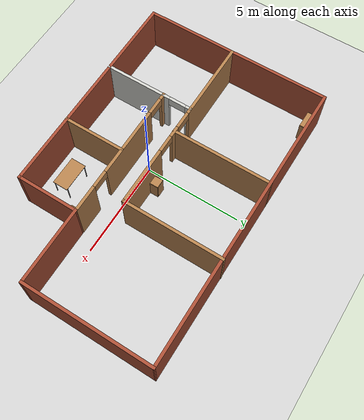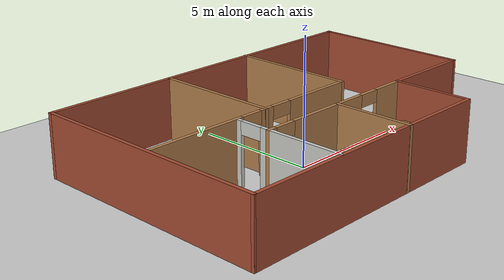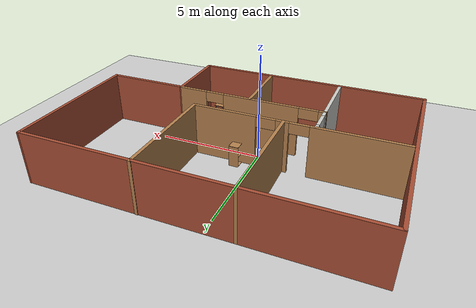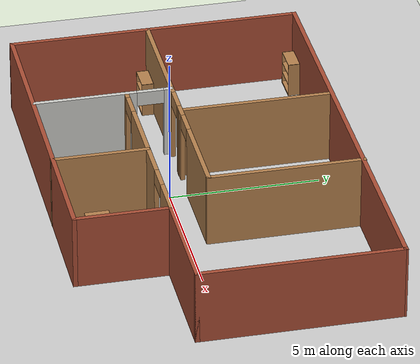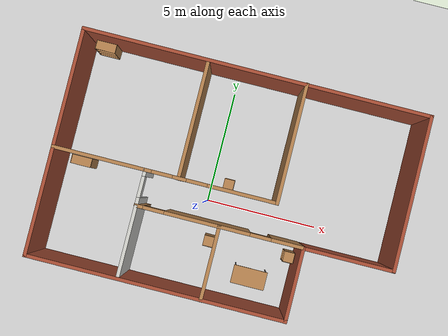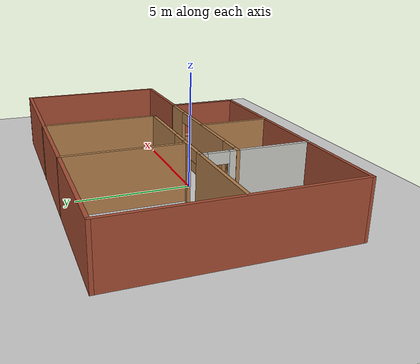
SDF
<sdf version="1.6">
 <world name="default">
  <model name="ground_plane">
   <static>1</static>
   <link name="link">
    <collision name="collision">
     <geometry><plane><normal>0 0 1</normal><size>100 100</size></plane></geometry>
     <surface><friction><ode><mu>50.0</mu><mu2>25.0</mu2></ode></friction></surface>
    </collision>
    <visual name="visual">
     <cast_shadows>0</cast_shadows>
     <geometry><plane><normal>0 0 1</normal><size>100 100</size></plane></geometry>
     <material>
      <script><uri>file://media/materials/scripts/gazebo.material</uri><name>Gazebo/Grey</name></script>
     </material>
    </visual>
   </link>
  </model>
  <gravity>0 0 -9.8</gravity>
  <magnetic_field>6e-06 2.3e-05 -4.2e-05</magnetic_field>
  <atmosphere type="adiabatic"/>
  <physics type="ode">
   <max_step_size>0.001</max_step_size>
   <real_time_factor>1</real_time_factor>
   <real_time_update_rate>1000</real_time_update_rate>
  </physics>
  <scene><ambient>0.4 0.4 0.4 1</ambient><background>0.7 0.7 0.7 1</background><shadows>1</shadows></scene>
  <audio><device>default</device></audio>
  <spherical_coordinates>
   <surface_model>EARTH_WGS84</surface_model>
   <latitude_deg>0</latitude_deg>
   <longitude_deg>0</longitude_deg>
   <elevation>0</elevation>
   <heading_deg>0</heading_deg>
  </spherical_coordinates>
  <model name="shubhankit_world.world">
   <pose>0.76249 0.875734 0 0 -0 0</pose>
   <link name="Wall_0">
    <collision name="Wall_0_Collision">
     <geometry><box><size>9.85504 0.15 2.5</size></box></geometry>
     <pose>0 0 1.25 0 -0 0</pose>
    </collision>
    <visual name="Wall_0_Visual">
     <pose>0 0 1.25 0 -0 0</pose>
     <geometry><box><size>9.85504 0.15 2.5</size></box></geometry>
     <material>
      <script><uri>file://media/materials/scripts/gazebo.material</uri><name>Gazebo/Bricks</name></script>
      <ambient>1 1 1 1</ambient>
     </material>
     <meta><layer>0</layer></meta>
    </visual>
    <pose>-7.4745 -0.015401 0 0 -0 -1.56781</pose>
   </link>
   <link name="Wall_1">
    <collision name="Wall_1_Collision">
     <geometry><box><size>11.2505 0.15 2.5</size></box></geometry>
     <pose>0 0 1.25 0 -0 0</pose>
    </collision>
    <visual name="Wall_1_Visual">
     <pose>0 0 1.25 0 -0 0</pose>
     <geometry><box><size>11.2505 0.15 2.5</size></box></geometry>
     <material>
      <script><uri>file://media/materials/scripts/gazebo.material</uri><name>Gazebo/Bricks</name></script>
      <ambient>1 1 1 1</ambient>
     </material>
     <meta><layer>0</layer></meta>
    </visual>
    <pose>-1.90993 -4.8677 0 0 -0 3.7e-05</pose>
   </link>
   <link name="Wall_10">
    <pose>-2.66681 -0.227566 0 0 -0 0</pose>
    <visual name="Wall_10_Visual_0">
     <pose>-2.73124 0 1.25 0 -0 0</pose>
     <geometry><box><size>4.28752 0.15 2.5</size></box></geometry>
     <material>
      <script><uri>file://media/materials/scripts/gazebo.material</uri><name>Gazebo/Wood</name></script>
      <ambient>1 1 1 1</ambient>
     </material>
     <meta><layer>0</layer></meta>
    </visual>
    <collision name="Wall_10_Collision_0">
     <geometry><box><size>4.28752 0.15 2.5</size></box></geometry>
     <pose>-2.73124 0 1.25 0 -0 0</pose>
    </collision>
    <visual name="Wall_10_Visual_1">
     <pose>0.610022 0 1.25 0 -0 0</pose>
     <geometry><box><size>0.595 0.15 2.5</size></box></geometry>
     <material>
      <script><uri>file://media/materials/scripts/gazebo.material</uri><name>Gazebo/Wood</name></script>
      <ambient>1 1 1 1</ambient>
     </material>
     <meta><layer>0</layer></meta>
    </visual>
    <collision name="Wall_10_Collision_1">
     <geometry><box><size>0.595 0.15 2.5</size></box></geometry>
     <pose>0.610022 0 1.25 0 -0 0</pose>
    </collision>
    <visual name="Wall_10_Visual_2">
     <pose>3.34126 0 1.25 0 -0 0</pose>
     <geometry><box><size>3.06748 0.15 2.5</size></box></geometry>
     <material>
      <script><uri>file://media/materials/scripts/gazebo.material</uri><name>Gazebo/Wood</name></script>
      <ambient>1 1 1 1</ambient>
     </material>
     <meta><layer>0</layer></meta>
    </visual>
    <collision name="Wall_10_Collision_2">
     <geometry><box><size>3.06748 0.15 2.5</size></box></geometry>
     <pose>3.34126 0 1.25 0 -0 0</pose>
    </collision>
    <visual name="Wall_10_Visual_3">
     <pose>-0.137478 0 2.25 0 -0 0</pose>
     <geometry><box><size>0.9 0.15 0.5</size></box></geometry>
     <material>
      <script><uri>file://media/materials/scripts/gazebo.material</uri><name>Gazebo/Wood</name></script>
      <ambient>1 1 1 1</ambient>
     </material>
     <meta><layer>0</layer></meta>
    </visual>
    <collision name="Wall_10_Collision_3">
     <geometry><box><size>0.9 0.15 0.5</size></box></geometry>
     <pose>-0.137478 0 2.25 0 -0 0</pose>
    </collision>
    <visual name="Wall_10_Visual_4">
     <pose>1.35752 0 2.25 0 -0 0</pose>
     <geometry><box><size>0.9 0.15 0.5</size></box></geometry>
     <material>
      <script><uri>file://media/materials/scripts/gazebo.material</uri><name>Gazebo/Wood</name></script>
      <ambient>1 1 1 1</ambient>
     </material>
     <meta><layer>0</layer></meta>
    </visual>
    <collision name="Wall_10_Collision_4">
     <geometry><box><size>0.9 0.15 0.5</size></box></geometry>
     <pose>1.35752 0 2.25 0 -0 0</pose>
    </collision>
   </link>
   <link name="Wall_11">
    <collision name="Wall_11_Collision">
     <geometry><box><size>5.25 0.15 2.5</size></box></geometry>
     <pose>0 0 1.25 0 -0 0</pose>
    </collision>
    <visual name="Wall_11_Visual">
     <pose>0 0 1.25 0 -0 0</pose>
     <geometry><box><size>5.25 0.15 2.5</size></box></geometry>
     <material>
      <script><uri>file://media/materials/scripts/gazebo.material</uri><name>Gazebo/Wood</name></script>
      <ambient>1 1 1 1</ambient>
     </material>
     <meta><layer>0</layer></meta>
    </visual>
    <pose>2.13319 2.32243 0 0 -0 1.5708</pose>
   </link>
   <link name="Wall_13">
    <collision name="Wall_13_Collision">
     <geometry><box><size>5.25 0.15 2.5</size></box></geometry>
     <pose>0 0 1.25 0 -0 0</pose>
    </collision>
    <visual name="Wall_13_Visual">
     <pose>0 0 1.25 0 -0 0</pose>
     <geometry><box><size>5.25 0.15 2.5</size></box></geometry>
     <material>
      <script><uri>file://media/materials/scripts/gazebo.material</uri><name>Gazebo/Wood</name></script>
      <ambient>1 1 1 1</ambient>
     </material>
     <meta><layer>0</layer></meta>
    </visual>
    <pose>-2.09653 2.31301 0 0 -0 1.5708</pose>
   </link>
   <link name="Wall_18">
    <pose>-3.51701 -2.56204 0 0 -0 1.5708</pose>
    <visual name="Wall_18_Visual_0">
     <pose>-0.607808 0 1.25 0 -0 0</pose>
     <geometry><box><size>3.53438 0.15 2.5</size></box></geometry>
     <material>
      <script><uri>file://media/materials/scripts/gazebo.material</uri><name>Gazebo/CeilingTiled</name></script>
      <ambient>1 1 1 1</ambient>
     </material>
     <meta><layer>0</layer></meta>
    </visual>
    <collision name="Wall_18_Collision_0">
     <geometry><box><size>3.53438 0.15 2.5</size></box></geometry>
     <pose>-0.607808 0 1.25 0 -0 0</pose>
    </collision>
    <visual name="Wall_18_Visual_1">
     <pose>2.21719 0 1.25 0 -0 0</pose>
     <geometry><box><size>0.315615 0.15 2.5</size></box></geometry>
     <material>
      <script><uri>file://media/materials/scripts/gazebo.material</uri><name>Gazebo/CeilingTiled</name></script>
      <ambient>1 1 1 1</ambient>
     </material>
     <meta><layer>0</layer></meta>
    </visual>
    <collision name="Wall_18_Collision_1">
     <geometry><box><size>0.315615 0.15 2.5</size></box></geometry>
     <pose>2.21719 0 1.25 0 -0 0</pose>
    </collision>
    <visual name="Wall_18_Visual_2">
     <pose>1.60939 0 2.25 0 -0 0</pose>
     <geometry><box><size>0.9 0.15 0.5</size></box></geometry>
     <material>
      <script><uri>file://media/materials/scripts/gazebo.material</uri><name>Gazebo/CeilingTiled</name></script>
      <ambient>1 1 1 1</ambient>
     </material>
     <meta><layer>0</layer></meta>
    </visual>
    <collision name="Wall_18_Collision_2">
     <geometry><box><size>0.9 0.15 0.5</size></box></geometry>
     <pose>1.60939 0 2.25 0 -0 0</pose>
    </collision>
   </link>
   <link name="Wall_2">
    <collision name="Wall_2_Collision">
     <geometry><box><size>3.25 0.15 2.5</size></box></geometry>
     <pose>0 0 1.25 0 -0 0</pose>
    </collision>
    <visual name="Wall_2_Visual">
     <pose>0 0 1.25 0 -0 0</pose>
     <geometry><box><size>3.25 0.15 2.5</size></box></geometry>
     <material>
      <script><uri>file://media/materials/scripts/gazebo.material</uri><name>Gazebo/Bricks</name></script>
      <ambient>1 1 1 1</ambient>
     </material>
     <meta><layer>0</layer></meta>
    </visual>
    <pose>3.64014 -3.31749 0 0 -0 1.5708</pose>
   </link>
   <link name="Wall_20">
    <pose>0.01976 -1.75417 0 0 -0 0</pose>
    <visual name="Wall_20_Visual_0">
     <pose>-3.43583 0 1.25 0 -0 0</pose>
     <geometry><box><size>0.378333 0.15 2.5</size></box></geometry>
     <material>
      <script><uri>file://media/materials/scripts/gazebo.material</uri><name>Gazebo/Wood</name></script>
      <ambient>1 1 1 1</ambient>
     </material>
     <meta><layer>0</layer></meta>
    </visual>
    <collision name="Wall_20_Collision_0">
     <geometry><box><size>0.378333 0.15 2.5</size></box></geometry>
     <pose>-3.43583 0 1.25 0 -0 0</pose>
    </collision>
    <visual name="Wall_20_Visual_1">
     <pose>-0.504608 0 1.25 0 -0 0</pose>
     <geometry><box><size>3.68412 0.15 2.5</size></box></geometry>
     <material>
      <script><uri>file://media/materials/scripts/gazebo.material</uri><name>Gazebo/Wood</name></script>
      <ambient>1 1 1 1</ambient>
     </material>
     <meta><layer>0</layer></meta>
    </visual>
    <collision name="Wall_20_Collision_1">
     <geometry><box><size>3.68412 0.15 2.5</size></box></geometry>
     <pose>-0.504608 0 1.25 0 -0 0</pose>
    </collision>
    <visual name="Wall_20_Visual_2">
     <pose>2.93122 0 1.25 0 -0 0</pose>
     <geometry><box><size>1.38755 0.15 2.5</size></box></geometry>
     <material>
      <script><uri>file://media/materials/scripts/gazebo.material</uri><name>Gazebo/Wood</name></script>
      <ambient>1 1 1 1</ambient>
     </material>
     <meta><layer>0</layer></meta>
    </visual>
    <collision name="Wall_20_Collision_2">
     <geometry><box><size>1.38755 0.15 2.5</size></box></geometry>
     <pose>2.93122 0 1.25 0 -0 0</pose>
    </collision>
    <visual name="Wall_20_Visual_3">
     <pose>-2.79667 0 2.25 0 -0 0</pose>
     <geometry><box><size>0.9 0.15 0.5</size></box></geometry>
     <material>
      <script><uri>file://media/materials/scripts/gazebo.material</uri><name>Gazebo/Wood</name></script>
      <ambient>1 1 1 1</ambient>
     </material>
     <meta><layer>0</layer></meta>
    </visual>
    <collision name="Wall_20_Collision_3">
     <geometry><box><size>0.9 0.15 0.5</size></box></geometry>
     <pose>-2.79667 0 2.25 0 -0 0</pose>
    </collision>
    <visual name="Wall_20_Visual_4">
     <pose>1.78745 0 2.25 0 -0 0</pose>
     <geometry><box><size>0.9 0.15 0.5</size></box></geometry>
     <material>
      <script><uri>file://media/materials/scripts/gazebo.material</uri><name>Gazebo/Wood</name></script>
      <ambient>1 1 1 1</ambient>
     </material>
     <meta><layer>0</layer></meta>
    </visual>
    <collision name="Wall_20_Collision_4">
     <geometry><box><size>0.9 0.15 0.5</size></box></geometry>
     <pose>1.78745 0 2.25 0 -0 0</pose>
    </collision>
   </link>
   <link name="Wall_22">
    <collision name="Wall_22_Collision">
     <geometry><box><size>3.25 0.15 2.5</size></box></geometry>
     <pose>0 0 1.25 0 -0 0</pose>
    </collision>
    <visual name="Wall_22_Visual">
     <pose>0 0 1.25 0 -0 0</pose>
     <geometry><box><size>3.25 0.15 2.5</size></box></geometry>
     <material>
      <script><uri>file://media/materials/scripts/gazebo.material</uri><name>Gazebo/Wood</name></script>
      <ambient>1 1 1 1</ambient>
     </material>
     <meta><layer>0</layer></meta>
    </visual>
    <pose>0.04051 -3.32527 0 0 -0 1.5708</pose>
   </link>
   <link name="Wall_3">
    <collision name="Wall_3_Collision">
     <geometry><box><size>4 0.15 2.5</size></box></geometry>
     <pose>0 0 1.25 0 -0 0</pose>
    </collision>
    <visual name="Wall_3_Visual">
     <pose>0 0 1.25 0 -0 0</pose>
     <geometry><box><size>4 0.15 2.5</size></box></geometry>
     <material>
      <script><uri>file://media/materials/scripts/gazebo.material</uri><name>Gazebo/Bricks</name></script>
      <ambient>1 1 1 1</ambient>
     </material>
     <meta><layer>0</layer></meta>
    </visual>
    <pose>5.56515 -1.76749 0 0 -0 0</pose>
   </link>
   <link name="Wall_4">
    <collision name="Wall_4_Collision">
     <geometry><box><size>6.75859 0.15 2.5</size></box></geometry>
     <pose>0 0 1.25 0 -0 0</pose>
    </collision>
    <visual name="Wall_4_Visual">
     <pose>0 0 1.25 0 -0 0</pose>
     <geometry><box><size>6.75859 0.15 2.5</size></box></geometry>
     <material>
      <script><uri>file://media/materials/scripts/gazebo.material</uri><name>Gazebo/Bricks</name></script>
      <ambient>1 1 1 1</ambient>
     </material>
     <meta><layer>0</layer></meta>
    </visual>
    <pose>7.49007 1.5368 0 0 -0 1.57082</pose>
   </link>
   <link name="Wall_5">
    <collision name="Wall_5_Collision">
     <geometry><box><size>15.13 0.15 2.5</size></box></geometry>
     <pose>0 0 1.25 0 -0 0</pose>
    </collision>
    <visual name="Wall_5_Visual">
     <pose>0 0 1.25 0 -0 0</pose>
     <geometry><box><size>15.13 0.15 2.5</size></box></geometry>
     <material>
      <script><uri>file://media/materials/scripts/gazebo.material</uri><name>Gazebo/Bricks</name></script>
      <ambient>1 1 1 1</ambient>
     </material>
     <meta><layer>0</layer></meta>
    </visual>
    <pose>0 4.8581 0 0 -0 3.13932</pose>
   </link>
   <static>1</static>
  </model>
  <model name="bookshelf">
   <static>1</static>
   <link name="link">
    <inertial><mass>1</mass></inertial>
    <collision name="back">
     <pose>0 0.005 0.6 0 -0 0</pose>
     <geometry><box><size>0.9 0.01 1.2</size></box></geometry>
    </collision>
    <visual name="visual1">
     <pose>0 0.005 0.6 0 -0 0</pose>
     <geometry><box><size>0.9 0.01 1.2</size></box></geometry>
     <material>
      <script><uri>file://media/materials/scripts/gazebo.material</uri><name>Gazebo/Wood</name></script>
     </material>
    </visual>
    <collision name="left_side">
     <pose>0.45 -0.195 0.6 0 -0 0</pose>
     <geometry><box><size>0.02 0.4 1.2</size></box></geometry>
    </collision>
    <visual name="visual2">
     <pose>0.45 -0.195 0.6 0 -0 0</pose>
     <geometry><box><size>0.02 0.4 1.2</size></box></geometry>
     <material>
      <script><uri>file://media/materials/scripts/gazebo.material</uri><name>Gazebo/Wood</name></script>
     </material>
    </visual>
    <collision name="right_side">
     <pose>-0.45 -0.195 0.6 0 -0 0</pose>
     <geometry><box><size>0.02 0.4 1.2</size></box></geometry>
    </collision>
    <visual name="visual3">
     <pose>-0.45 -0.195 0.6 0 -0 0</pose>
     <geometry><box><size>0.02 0.4 1.2</size></box></geometry>
     <material>
      <script><uri>file://media/materials/scripts/gazebo.material</uri><name>Gazebo/Wood</name></script>
     </material>
    </visual>
    <collision name="bottom">
     <pose>0 -0.195 0.03 0 -0 0</pose>
     <geometry><box><size>0.88 0.4 0.06</size></box></geometry>
    </collision>
    <visual name="visual4">
     <pose>0 -0.195 0.03 0 -0 0</pose>
     <geometry><box><size>0.88 0.4 0.06</size></box></geometry>
     <material>
      <script><uri>file://media/materials/scripts/gazebo.material</uri><name>Gazebo/Wood</name></script>
     </material>
    </visual>
    <collision name="top">
     <pose>0 -0.195 1.19 0 -0 0</pose>
     <geometry><box><size>0.88 0.4 0.02</size></box></geometry>
    </collision>
    <visual name="visual5">
     <pose>0 -0.195 1.19 0 -0 0</pose>
     <geometry><box><size>0.88 0.4 0.02</size></box></geometry>
     <material>
      <script><uri>file://media/materials/scripts/gazebo.material</uri><name>Gazebo/Wood</name></script>
     </material>
    </visual>
    <collision name="low_shelf">
     <pose>0 -0.195 0.43 0 -0 0</pose>
     <geometry><box><size>0.88 0.4 0.02</size></box></geometry>
    </collision>
    <visual name="visual6">
     <pose>0 -0.195 0.43 0 -0 0</pose>
     <geometry><box><size>0.88 0.4 0.02</size></box></geometry>
     <material>
      <script><uri>file://media/materials/scripts/gazebo.material</uri><name>Gazebo/Wood</name></script>
     </material>
    </visual>
    <collision name="high_shelf">
     <pose>0 -0.195 0.8 0 -0 0</pose>
     <geometry><box><size>0.88 0.4 0.02</size></box></geometry>
    </collision>
    <visual name="visual7">
     <pose>0 -0.195 0.8 0 -0 0</pose>
     <geometry><box><size>0.88 0.4 0.02</size></box></geometry>
     <material>
      <script><uri>file://media/materials/scripts/gazebo.material</uri><name>Gazebo/Wood</name></script>
     </material>
    </visual>
   </link>
   <pose>-5.96164 5.66988 0 0 -0 0</pose>
  </model>
  <model name="cabinet">
   <static>1</static>
   <link name="cabinet_bottom_plate">
    <inertial>
     <pose>0 0 -1 0 -0 0</pose>
     <inertia><ixx>2.05</ixx><ixy>0</ixy><ixz>0</ixz><iyy>2.05</iyy><iyz>0</iyz><izz>2.05</izz></inertia>
     <mass>25</mass>
    </inertial>
    <collision name="cabinet_bottom_plate_geom">
     <pose>0 0 0.01 0 -0 0</pose>
     <geometry><box><size>0.45 0.45 0.02</size></box></geometry>
    </collision>
    <visual name="cabinet_bottom_plate_geom_visual">
     <pose>0 0 0.01 0 -0 0</pose>
     <geometry><box><size>0.45 0.45 0.02</size></box></geometry>
     <material>
      <script><uri>file://media/materials/scripts/gazebo.material</uri><name>Gazebo/Wood</name></script>
     </material>
    </visual>
    <collision name="cabinet_bottom_plate_geom_cabinet_back_plate">
     <pose>0.235 0 0.51 0 -0 0</pose>
     <geometry><box><size>0.02 0.45 1.02</size></box></geometry>
    </collision>
    <visual name="cabinet_bottom_plate_geom_cabinet_back_plate_visual">
     <pose>0.235 0 0.51 0 -0 0</pose>
     <geometry><box><size>0.02 0.45 1.02</size></box></geometry>
     <material>
      <script><uri>file://media/materials/scripts/gazebo.material</uri><name>Gazebo/Wood</name></script>
     </material>
    </visual>
    <collision name="cabinet_bottom_plate_geom_cabinet_left_plate">
     <pose>0 0.235 0.51 0 -0 0</pose>
     <geometry><box><size>0.45 0.02 1.02</size></box></geometry>
    </collision>
    <visual name="cabinet_bottom_plate_geom_cabinet_left_plate_visual">
     <pose>0 0.235 0.51 0 -0 0</pose>
     <geometry><box><size>0.45 0.02 1.02</size></box></geometry>
     <material>
      <script><uri>file://media/materials/scripts/gazebo.material</uri><name>Gazebo/Wood</name></script>
     </material>
    </visual>
    <collision name="cabinet_bottom_plate_geom_cabinet_middle_plate">
     <pose>0 0 0.51 0 -0 0</pose>
     <geometry><box><size>0.45 0.45 0.02</size></box></geometry>
    </collision>
    <visual name="cabinet_bottom_plate_geom_cabinet_middle_plate_visual">
     <pose>0 0 0.51 0 -0 0</pose>
     <geometry><box><size>0.45 0.45 0.02</size></box></geometry>
     <material>
      <script><uri>file://media/materials/scripts/gazebo.material</uri><name>Gazebo/Wood</name></script>
     </material>
    </visual>
    <collision name="cabinet_bottom_plate_geom_cabinet_right_plate">
     <pose>0 -0.235 0.51 0 -0 0</pose>
     <geometry><box><size>0.45 0.02 1.02</size></box></geometry>
    </collision>
    <visual name="cabinet_bottom_plate_geom_cabinet_right_plate_visual">
     <pose>0 -0.235 0.51 0 -0 0</pose>
     <geometry><box><size>0.45 0.02 1.02</size></box></geometry>
     <material>
      <script><uri>file://media/materials/scripts/gazebo.material</uri><name>Gazebo/Wood</name></script>
     </material>
    </visual>
    <collision name="cabinet_bottom_plate_geom_cabinet_top_plate">
     <pose>0 0 1.01 0 -0 0</pose>
     <geometry><box><size>0.45 0.45 0.02</size></box></geometry>
    </collision>
    <visual name="cabinet_bottom_plate_geom_cabinet_top_plate_visual">
     <pose>0 0 1.01 0 -0 0</pose>
     <geometry><box><size>0.45 0.45 0.02</size></box></geometry>
     <material>
      <script><uri>file://media/materials/scripts/gazebo.material</uri><name>Gazebo/Wood</name></script>
     </material>
    </visual>
   </link>
   <pose>4.08047 -1.51383 0 0 -0 0</pose>
  </model>
  <model name="table">
   <static>1</static>
   <link name="link">
    <collision name="surface">
     <pose>0 0 1 0 -0 0</pose>
     <geometry><box><size>1.5 0.8 0.03</size></box></geometry>
     <surface><friction><ode><mu>0.6</mu><mu2>0.6</mu2></ode></friction></surface>
    </collision>
    <visual name="visual1">
     <pose>0 0 1 0 -0 0</pose>
     <geometry><box><size>1.5 0.8 0.03</size></box></geometry>
     <material>
      <script><uri>file://media/materials/scripts/gazebo.material</uri><name>Gazebo/Wood</name></script>
     </material>
    </visual>
    <collision name="front_left_leg">
     <pose>0.68 0.38 0.5 0 -0 0</pose>
     <geometry><cylinder><radius>0.02</radius><length>1</length></cylinder></geometry>
    </collision>
    <visual name="front_left_leg">
     <pose>0.68 0.38 0.5 0 -0 0</pose>
     <geometry><cylinder><radius>0.02</radius><length>1</length></cylinder></geometry>
     <material>
      <script><uri>file://media/materials/scripts/gazebo.material</uri><name>Gazebo/Grey</name></script>
     </material>
    </visual>
    <collision name="front_right_leg">
     <pose>0.68 -0.38 0.5 0 -0 0</pose>
     <geometry><cylinder><radius>0.02</radius><length>1</length></cylinder></geometry>
    </collision>
    <visual name="front_right_leg">
     <pose>0.68 -0.38 0.5 0 -0 0</pose>
     <geometry><cylinder><radius>0.02</radius><length>1</length></cylinder></geometry>
     <material>
      <script><uri>file://media/materials/scripts/gazebo.material</uri><name>Gazebo/Grey</name></script>
     </material>
    </visual>
    <collision name="back_right_leg">
     <pose>-0.68 -0.38 0.5 0 -0 0</pose>
     <geometry><cylinder><radius>0.02</radius><length>1</length></cylinder></geometry>
    </collision>
    <visual name="back_right_leg">
     <pose>-0.68 -0.38 0.5 0 -0 0</pose>
     <geometry><cylinder><radius>0.02</radius><length>1</length></cylinder></geometry>
     <material>
      <script><uri>file://media/materials/scripts/gazebo.material</uri><name>Gazebo/Grey</name></script>
     </material>
    </visual>
    <collision name="back_left_leg">
     <pose>-0.68 0.38 0.5 0 -0 0</pose>
     <geometry><cylinder><radius>0.02</radius><length>1</length></cylinder></geometry>
    </collision>
    <visual name="back_left_leg">
     <pose>-0.68 0.38 0.5 0 -0 0</pose>
     <geometry><cylinder><radius>0.02</radius><length>1</length></cylinder></geometry>
     <material>
      <script><uri>file://media/materials/scripts/gazebo.material</uri><name>Gazebo/Grey</name></script>
     </material>
    </visual>
   </link>
   <pose>2.60526 -2.79605 0 0 -0 0</pose>
  </model>
  <model name="bookshelf_0">
   <static>1</static>
   <link name="link">
    <inertial><mass>1</mass></inertial>
    <collision name="back">
     <pose>0 0.005 0.6 0 -0 0</pose>
     <geometry><box><size>0.9 0.01 1.2</size></box></geometry>
    </collision>
    <visual name="visual1">
     <pose>0 0.005 0.6 0 -0 0</pose>
     <geometry><box><size>0.9 0.01 1.2</size></box></geometry>
     <material>
      <script><uri>file://media/materials/scripts/gazebo.material</uri><name>Gazebo/Wood</name></script>
     </material>
    </visual>
    <collision name="left_side">
     <pose>0.45 -0.195 0.6 0 -0 0</pose>
     <geometry><box><size>0.02 0.4 1.2</size></box></geometry>
    </collision>
    <visual name="visual2">
     <pose>0.45 -0.195 0.6 0 -0 0</pose>
     <geometry><box><size>0.02 0.4 1.2</size></box></geometry>
     <material>
      <script><uri>file://media/materials/scripts/gazebo.material</uri><name>Gazebo/Wood</name></script>
     </material>
    </visual>
    <collision name="right_side">
     <pose>-0.45 -0.195 0.6 0 -0 0</pose>
     <geometry><box><size>0.02 0.4 1.2</size></box></geometry>
    </collision>
    <visual name="visual3">
     <pose>-0.45 -0.195 0.6 0 -0 0</pose>
     <geometry><box><size>0.02 0.4 1.2</size></box></geometry>
     <material>
      <script><uri>file://media/materials/scripts/gazebo.material</uri><name>Gazebo/Wood</name></script>
     </material>
    </visual>
    <collision name="bottom">
     <pose>0 -0.195 0.03 0 -0 0</pose>
     <geometry><box><size>0.88 0.4 0.06</size></box></geometry>
    </collision>
    <visual name="visual4">
     <pose>0 -0.195 0.03 0 -0 0</pose>
     <geometry><box><size>0.88 0.4 0.06</size></box></geometry>
     <material>
      <script><uri>file://media/materials/scripts/gazebo.material</uri><name>Gazebo/Wood</name></script>
     </material>
    </visual>
    <collision name="top">
     <pose>0 -0.195 1.19 0 -0 0</pose>
     <geometry><box><size>0.88 0.4 0.02</size></box></geometry>
    </collision>
    <visual name="visual5">
     <pose>0 -0.195 1.19 0 -0 0</pose>
     <geometry><box><size>0.88 0.4 0.02</size></box></geometry>
     <material>
      <script><uri>file://media/materials/scripts/gazebo.material</uri><name>Gazebo/Wood</name></script>
     </material>
    </visual>
    <collision name="low_shelf">
     <pose>0 -0.195 0.43 0 -0 0</pose>
     <geometry><box><size>0.88 0.4 0.02</size></box></geometry>
    </collision>
    <visual name="visual6">
     <pose>0 -0.195 0.43 0 -0 0</pose>
     <geometry><box><size>0.88 0.4 0.02</size></box></geometry>
     <material>
      <script><uri>file://media/materials/scripts/gazebo.material</uri><name>Gazebo/Wood</name></script>
     </material>
    </visual>
    <collision name="high_shelf">
     <pose>0 -0.195 0.8 0 -0 0</pose>
     <geometry><box><size>0.88 0.4 0.02</size></box></geometry>
    </collision>
    <visual name="visual7">
     <pose>0 -0.195 0.8 0 -0 0</pose>
     <geometry><box><size>0.88 0.4 0.02</size></box></geometry>
     <material>
      <script><uri>file://media/materials/scripts/gazebo.material</uri><name>Gazebo/Wood</name></script>
     </material>
    </visual>
   </link>
   <pose>-5.74088 0.54919 0 0 -0 0</pose>
  </model>
  <model name="cabinet_0">
   <static>1</static>
   <link name="cabinet_bottom_plate">
    <inertial>
     <pose>0 0 -1 0 -0 0</pose>
     <inertia><ixx>2.05</ixx><ixy>0</ixy><ixz>0</ixz><iyy>2.05</iyy><iyz>0</iyz><izz>2.05</izz></inertia>
     <mass>25</mass>
    </inertial>
    <collision name="cabinet_bottom_plate_geom">
     <pose>0 0 0.01 0 -0 0</pose>
     <geometry><box><size>0.45 0.45 0.02</size></box></geometry>
    </collision>
    <visual name="cabinet_bottom_plate_geom_visual">
     <pose>0 0 0.01 0 -0 0</pose>
     <geometry><box><size>0.45 0.45 0.02</size></box></geometry>
     <material>
      <script><uri>file://media/materials/scripts/gazebo.material</uri><name>Gazebo/Wood</name></script>
     </material>
    </visual>
    <collision name="cabinet_bottom_plate_geom_cabinet_back_plate">
     <pose>0.235 0 0.51 0 -0 0</pose>
     <geometry><box><size>0.02 0.45 1.02</size></box></geometry>
    </collision>
    <visual name="cabinet_bottom_plate_geom_cabinet_back_plate_visual">
     <pose>0.235 0 0.51 0 -0 0</pose>
     <geometry><box><size>0.02 0.45 1.02</size></box></geometry>
     <material>
      <script><uri>file://media/materials/scripts/gazebo.material</uri><name>Gazebo/Wood</name></script>
     </material>
    </visual>
    <collision name="cabinet_bottom_plate_geom_cabinet_left_plate">
     <pose>0 0.235 0.51 0 -0 0</pose>
     <geometry><box><size>0.45 0.02 1.02</size></box></geometry>
    </collision>
    <visual name="cabinet_bottom_plate_geom_cabinet_left_plate_visual">
     <pose>0 0.235 0.51 0 -0 0</pose>
     <geometry><box><size>0.45 0.02 1.02</size></box></geometry>
     <material>
      <script><uri>file://media/materials/scripts/gazebo.material</uri><name>Gazebo/Wood</name></script>
     </material>
    </visual>
    <collision name="cabinet_bottom_plate_geom_cabinet_middle_plate">
     <pose>0 0 0.51 0 -0 0</pose>
     <geometry><box><size>0.45 0.45 0.02</size></box></geometry>
    </collision>
    <visual name="cabinet_bottom_plate_geom_cabinet_middle_plate_visual">
     <pose>0 0 0.51 0 -0 0</pose>
     <geometry><box><size>0.45 0.45 0.02</size></box></geometry>
     <material>
      <script><uri>file://media/materials/scripts/gazebo.material</uri><name>Gazebo/Wood</name></script>
     </material>
    </visual>
    <collision name="cabinet_bottom_plate_geom_cabinet_right_plate">
     <pose>0 -0.235 0.51 0 -0 0</pose>
     <geometry><box><size>0.45 0.02 1.02</size></box></geometry>
    </collision>
    <visual name="cabinet_bottom_plate_geom_cabinet_right_plate_visual">
     <pose>0 -0.235 0.51 0 -0 0</pose>
     <geometry><box><size>0.45 0.02 1.02</size></box></geometry>
     <material>
      <script><uri>file://media/materials/scripts/gazebo.material</uri><name>Gazebo/Wood</name></script>
     </material>
    </visual>
    <collision name="cabinet_bottom_plate_geom_cabinet_top_plate">
     <pose>0 0 1.01 0 -0 0</pose>
     <geometry><box><size>0.45 0.45 0.02</size></box></geometry>
    </collision>
    <visual name="cabinet_bottom_plate_geom_cabinet_top_plate_visual">
     <pose>0 0 1.01 0 -0 0</pose>
     <geometry><box><size>0.45 0.45 0.02</size></box></geometry>
     <material>
      <script><uri>file://media/materials/scripts/gazebo.material</uri><name>Gazebo/Wood</name></script>
     </material>
    </visual>
   </link>
   <pose>0.749471 0.929915 0 0 -0 0</pose>
  </model>
  <light name="sun" type="directional">
   <pose>-12.7405 -0.610501 10 0 -0 0</pose>
   <diffuse>0.8 0.8 0.8 1</diffuse>
   <specular>0.2 0.2 0.2 1</specular>
   <attenuation>
    <range>1000</range>
    <constant>0.9</constant>
    <linear>0.01</linear>
    <quadratic>0.001</quadratic>
   </attenuation>
   <direction>-0.5 0.1 -0.9</direction>
  </light>
  <model name="cabinet_1">
   <static>1</static>
   <link name="cabinet_bottom_plate">
    <inertial>
     <pose>0 0 -1 0 -0 0</pose>
     <inertia><ixx>2.05</ixx><ixy>0</ixy><ixz>0</ixz><iyy>2.05</iyy><iyz>0</iyz><izz>2.05</izz></inertia>
     <mass>25</mass>
    </inertial>
    <collision name="cabinet_bottom_plate_geom">
     <pose>0 0 0.01 0 -0 0</pose>
     <geometry><box><size>0.45 0.45 0.02</size></box></geometry>
    </collision>
    <visual name="cabinet_bottom_plate_geom_visual">
     <pose>0 0 0.01 0 -0 0</pose>
     <geometry><box><size>0.45 0.45 0.02</size></box></geometry>
     <material>
      <script><uri>file://media/materials/scripts/gazebo.material</uri><name>Gazebo/Wood</name></script>
     </material>
    </visual>
    <collision name="cabinet_bottom_plate_geom_cabinet_back_plate">
     <pose>0.235 0 0.51 0 -0 0</pose>
     <geometry><box><size>0.02 0.45 1.02</size></box></geometry>
    </collision>
    <visual name="cabinet_bottom_plate_geom_cabinet_back_plate_visual">
     <pose>0.235 0 0.51 0 -0 0</pose>
     <geometry><box><size>0.02 0.45 1.02</size></box></geometry>
     <material>
      <script><uri>file://media/materials/scripts/gazebo.material</uri><name>Gazebo/Wood</name></script>
     </material>
    </visual>
    <collision name="cabinet_bottom_plate_geom_cabinet_left_plate">
     <pose>0 0.235 0.51 0 -0 0</pose>
     <geometry><box><size>0.45 0.02 1.02</size></box></geometry>
    </collision>
    <visual name="cabinet_bottom_plate_geom_cabinet_left_plate_visual">
     <pose>0 0.235 0.51 0 -0 0</pose>
     <geometry><box><size>0.45 0.02 1.02</size></box></geometry>
     <material>
      <script><uri>file://media/materials/scripts/gazebo.material</uri><name>Gazebo/Wood</name></script>
     </material>
    </visual>
    <collision name="cabinet_bottom_plate_geom_cabinet_middle_plate">
     <pose>0 0 0.51 0 -0 0</pose>
     <geometry><box><size>0.45 0.45 0.02</size></box></geometry>
    </collision>
    <visual name="cabinet_bottom_plate_geom_cabinet_middle_plate_visual">
     <pose>0 0 0.51 0 -0 0</pose>
     <geometry><box><size>0.45 0.45 0.02</size></box></geometry>
     <material>
      <script><uri>file://media/materials/scripts/gazebo.material</uri><name>Gazebo/Wood</name></script>
     </material>
    </visual>
    <collision name="cabinet_bottom_plate_geom_cabinet_right_plate">
     <pose>0 -0.235 0.51 0 -0 0</pose>
     <geometry><box><size>0.45 0.02 1.02</size></box></geometry>
    </collision>
    <visual name="cabinet_bottom_plate_geom_cabinet_right_plate_visual">
     <pose>0 -0.235 0.51 0 -0 0</pose>
     <geometry><box><size>0.45 0.02 1.02</size></box></geometry>
     <material>
      <script><uri>file://media/materials/scripts/gazebo.material</uri><name>Gazebo/Wood</name></script>
     </material>
    </visual>
    <collision name="cabinet_bottom_plate_geom_cabinet_top_plate">
     <pose>0 0 1.01 0 -0 0</pose>
     <geometry><box><size>0.45 0.45 0.02</size></box></geometry>
    </collision>
    <visual name="cabinet_bottom_plate_geom_cabinet_top_plate_visual">
     <pose>0 0 1.01 0 -0 0</pose>
     <geometry><box><size>0.45 0.45 0.02</size></box></geometry>
     <material>
      <script><uri>file://media/materials/scripts/gazebo.material</uri><name>Gazebo/Wood</name></script>
     </material>
    </visual>
   </link>
   <pose>0.504848 -1.69122 0 0 -0 0</pose>
  </model>
 </world>
</sdf>
